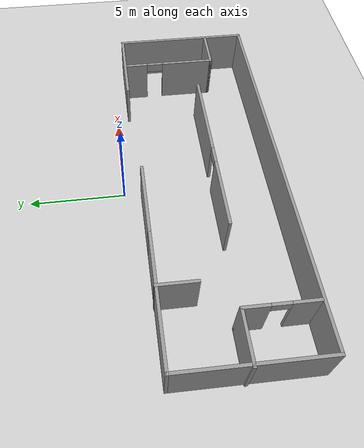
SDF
<sdf version="1.7">
 <world name="default">
  <light name="sun" type="directional">
   <pose>0 0 10 0 -0 0</pose>
   <diffuse>0.8 0.8 0.8 1</diffuse>
   <specular>0.2 0.2 0.2 1</specular>
   <attenuation>
    <range>1000</range>
    <constant>0.9</constant>
    <linear>0.01</linear>
    <quadratic>0.001</quadratic>
   </attenuation>
   <direction>-0.5 0.1 -0.9</direction>
   <spot><inner_angle>0</inner_angle><outer_angle>0</outer_angle><falloff>0</falloff></spot>
  </light>
  <model name="ground_plane">
   <static>1</static>
   <link name="link">
    <collision name="collision">
     <geometry><plane><normal>0 0 1</normal><size>100 100</size></plane></geometry>
     <surface>
      <contact><collide_bitmask>65535</collide_bitmask></contact>
      <friction><ode><mu>100</mu><mu2>50</mu2></ode></friction>
     </surface>
    </collision>
    <visual name="visual">
     <cast_shadows>0</cast_shadows>
     <geometry><plane><normal>0 0 1</normal><size>100 100</size></plane></geometry>
     <material>
      <script><uri>file://media/materials/scripts/gazebo.material</uri><name>Gazebo/Grey</name></script>
     </material>
    </visual>
   </link>
  </model>
  <gravity>0 0 -9.8</gravity>
  <magnetic_field>6e-06 2.3e-05 -4.2e-05</magnetic_field>
  <atmosphere type="adiabatic"/>
  <physics type="ode">
   <max_step_size>0.001</max_step_size>
   <real_time_factor>1</real_time_factor>
   <real_time_update_rate>1000</real_time_update_rate>
  </physics>
  <scene><ambient>0.4 0.4 0.4 1</ambient><background>0.7 0.7 0.7 1</background><shadows>1</shadows></scene>
  <spherical_coordinates>
   <surface_model>EARTH_WGS84</surface_model>
   <latitude_deg>0</latitude_deg>
   <longitude_deg>0</longitude_deg>
   <elevation>0</elevation>
   <heading_deg>0</heading_deg>
  </spherical_coordinates>
  <model name="world">
   <pose>-0.300498 -3.9225 0 0 -0 0</pose>
   <link name="Wall_0">
    <collision name="Wall_0_Collision">
     <geometry><box><size>3.75 0.15 2.5</size></box></geometry>
     <pose>0 0 1.25 0 -0 0</pose>
    </collision>
    <visual name="Wall_0_Visual">
     <pose>0 0 1.25 0 -0 0</pose>
     <geometry><box><size>3.75 0.15 2.5</size></box></geometry>
     <material>
      <script><uri>file://media/materials/scripts/gazebo.material</uri><name>Gazebo/Grey</name></script>
      <ambient>1 1 1 1</ambient>
     </material>
     <meta><layer>0</layer></meta>
    </visual>
    <pose>-1.6095 3.0025 0 0 -0 3.14159</pose>
   </link>
   <link name="Wall_28">
    <collision name="Wall_28_Collision">
     <geometry><box><size>6.5 0.15 2.5</size></box></geometry>
     <pose>0 0 1.25 0 -0 0</pose>
    </collision>
    <visual name="Wall_28_Visual">
     <pose>0 0 1.25 0 -0 0</pose>
     <geometry><box><size>6.5 0.15 2.5</size></box></geometry>
     <material>
      <script><uri>file://media/materials/scripts/gazebo.material</uri><name>Gazebo/Grey</name></script>
      <ambient>1 1 1 1</ambient>
     </material>
     <meta><layer>0</layer></meta>
    </visual>
    <pose>-6.5845 3.0025 0 0 -0 3.14159</pose>
   </link>
   <link name="Wall_29">
    <collision name="Wall_29_Collision">
     <geometry><box><size>7 0.15 2.5</size></box></geometry>
     <pose>0 0 1.25 0 -0 0</pose>
    </collision>
    <visual name="Wall_29_Visual">
     <pose>0 0 1.25 0 -0 0</pose>
     <geometry><box><size>7 0.15 2.5</size></box></geometry>
     <material>
      <script><uri>file://media/materials/scripts/gazebo.material</uri><name>Gazebo/Grey</name></script>
      <ambient>1 1 1 1</ambient>
     </material>
     <meta><layer>0</layer></meta>
    </visual>
    <pose>-9.7595 -0.4225 0 0 -0 -1.5708</pose>
   </link>
   <link name="Wall_30">
    <collision name="Wall_30_Collision">
     <geometry><box><size>19.75 0.15 2.5</size></box></geometry>
     <pose>0 0 1.25 0 -0 0</pose>
    </collision>
    <visual name="Wall_30_Visual">
     <pose>0 0 1.25 0 -0 0</pose>
     <geometry><box><size>19.75 0.15 2.5</size></box></geometry>
     <material>
      <script><uri>file://media/materials/scripts/gazebo.material</uri><name>Gazebo/Grey</name></script>
      <ambient>1 1 1 1</ambient>
     </material>
     <meta><layer>0</layer></meta>
    </visual>
    <pose>0.040498 -3.8475 0 0 -0 0</pose>
   </link>
   <link name="Wall_31">
    <collision name="Wall_31_Collision">
     <geometry><box><size>7.25 0.15 2.5</size></box></geometry>
     <pose>0 0 1.25 0 -0 0</pose>
    </collision>
    <visual name="Wall_31_Visual">
     <pose>0 0 1.25 0 -0 0</pose>
     <geometry><box><size>7.25 0.15 2.5</size></box></geometry>
     <material>
      <script><uri>file://media/materials/scripts/gazebo.material</uri><name>Gazebo/Grey</name></script>
      <ambient>1 1 1 1</ambient>
     </material>
     <meta><layer>0</layer></meta>
    </visual>
    <pose>9.8405 -0.2975 0 0 -0 1.5708</pose>
   </link>
   <link name="Wall_32">
    <collision name="Wall_32_Collision">
     <geometry><box><size>4.25 0.15 2.5</size></box></geometry>
     <pose>0 0 1.25 0 -0 0</pose>
    </collision>
    <visual name="Wall_32_Visual">
     <pose>0 0 1.25 0 -0 0</pose>
     <geometry><box><size>4.25 0.15 2.5</size></box></geometry>
     <material>
      <script><uri>file://media/materials/scripts/gazebo.material</uri><name>Gazebo/Grey</name></script>
      <ambient>1 1 1 1</ambient>
     </material>
     <meta><layer>0</layer></meta>
    </visual>
    <pose>7.7905 3.2525 0 0 -0 3.14159</pose>
   </link>
   <link name="Wall_34">
    <collision name="Wall_34_Collision">
     <geometry><box><size>2.5 0.15 2.5</size></box></geometry>
     <pose>0 0 1.25 0 -0 0</pose>
    </collision>
    <visual name="Wall_34_Visual">
     <pose>0 0 1.25 0 -0 0</pose>
     <geometry><box><size>2.5 0.15 2.5</size></box></geometry>
     <material>
      <script><uri>file://media/materials/scripts/gazebo.material</uri><name>Gazebo/Grey</name></script>
      <ambient>1 1 1 1</ambient>
     </material>
     <meta><layer>0</layer></meta>
    </visual>
    <pose>-8.6655 -0.364655 0 0 -0 0</pose>
   </link>
   <link name="Wall_35">
    <pose>-7.4905 -2.03966 0 0 -0 -1.5708</pose>
    <visual name="Wall_35_Visual_0">
     <pose>-1.09484 0 1.25 0 -0 0</pose>
     <geometry><box><size>1.31033 0.15 2.5</size></box></geometry>
     <material>
      <script><uri>file://media/materials/scripts/gazebo.material</uri><name>Gazebo/Grey</name></script>
      <ambient>1 1 1 1</ambient>
     </material>
     <meta><layer>0</layer></meta>
    </visual>
    <collision name="Wall_35_Collision_0">
     <geometry><box><size>1.31033 0.15 2.5</size></box></geometry>
     <pose>-1.09484 0 1.25 0 -0 0</pose>
    </collision>
    <visual name="Wall_35_Visual_1">
     <pose>1.10516 0 1.25 0 -0 0</pose>
     <geometry><box><size>1.28967 0.15 2.5</size></box></geometry>
     <material>
      <script><uri>file://media/materials/scripts/gazebo.material</uri><name>Gazebo/Grey</name></script>
      <ambient>1 1 1 1</ambient>
     </material>
     <meta><layer>0</layer></meta>
    </visual>
    <collision name="Wall_35_Collision_1">
     <geometry><box><size>1.28967 0.15 2.5</size></box></geometry>
     <pose>1.10516 0 1.25 0 -0 0</pose>
    </collision>
    <visual name="Wall_35_Visual_2">
     <pose>0.010329 0 2.25 0 -0 0</pose>
     <geometry><box><size>0.9 0.15 0.5</size></box></geometry>
     <material>
      <script><uri>file://media/materials/scripts/gazebo.material</uri><name>Gazebo/Grey</name></script>
      <ambient>1 1 1 1</ambient>
     </material>
     <meta><layer>0</layer></meta>
    </visual>
    <collision name="Wall_35_Collision_2">
     <geometry><box><size>0.9 0.15 0.5</size></box></geometry>
     <pose>0.010329 0 2.25 0 -0 0</pose>
    </collision>
   </link>
   <link name="Wall_37">
    <collision name="Wall_37_Collision">
     <geometry><box><size>2.25 0.15 2.5</size></box></geometry>
     <pose>0 0 1.25 0 -0 0</pose>
    </collision>
    <visual name="Wall_37_Visual">
     <pose>0 0 1.25 0 -0 0</pose>
     <geometry><box><size>2.25 0.15 2.5</size></box></geometry>
     <material>
      <script><uri>file://media/materials/scripts/gazebo.material</uri><name>Gazebo/Grey</name></script>
      <ambient>1 1 1 1</ambient>
     </material>
     <meta><layer>0</layer></meta>
    </visual>
    <pose>8.77167 -1.75572 0 0 -0 3.14159</pose>
   </link>
   <link name="Wall_38">
    <collision name="Wall_38_Collision">
     <geometry><box><size>0.16 0.15 2.5</size></box></geometry>
     <pose>0 0 1.25 0 -0 0</pose>
    </collision>
    <visual name="Wall_38_Visual">
     <pose>0 0 1.25 0 -0 0</pose>
     <geometry><box><size>0.16 0.15 2.5</size></box></geometry>
     <material>
      <script><uri>file://media/materials/scripts/gazebo.material</uri><name>Gazebo/Grey</name></script>
      <ambient>1 1 1 1</ambient>
     </material>
     <meta><layer>0</layer></meta>
    </visual>
    <pose>7.72667 -1.75572 0 0 -0 0</pose>
   </link>
   <link name="Wall_39">
    <pose>7.73167 0.66928 0 0 -0 1.5708</pose>
    <visual name="Wall_39_Visual_0">
     <pose>-1.0423 0 1.25 0 -0 0</pose>
     <geometry><box><size>2.9154 0.15 2.5</size></box></geometry>
     <material>
      <script><uri>file://media/materials/scripts/gazebo.material</uri><name>Gazebo/Grey</name></script>
      <ambient>1 1 1 1</ambient>
     </material>
     <meta><layer>0</layer></meta>
    </visual>
    <collision name="Wall_39_Collision_0">
     <geometry><box><size>2.9154 0.15 2.5</size></box></geometry>
     <pose>-1.0423 0 1.25 0 -0 0</pose>
    </collision>
    <visual name="Wall_39_Visual_1">
     <pose>1.9077 0 1.25 0 -0 0</pose>
     <geometry><box><size>1.1846 0.15 2.5</size></box></geometry>
     <material>
      <script><uri>file://media/materials/scripts/gazebo.material</uri><name>Gazebo/Grey</name></script>
      <ambient>1 1 1 1</ambient>
     </material>
     <meta><layer>0</layer></meta>
    </visual>
    <collision name="Wall_39_Collision_1">
     <geometry><box><size>1.1846 0.15 2.5</size></box></geometry>
     <pose>1.9077 0 1.25 0 -0 0</pose>
    </collision>
    <visual name="Wall_39_Visual_2">
     <pose>0.865404 0 2.25 0 -0 0</pose>
     <geometry><box><size>0.9 0.15 0.5</size></box></geometry>
     <material>
      <script><uri>file://media/materials/scripts/gazebo.material</uri><name>Gazebo/Grey</name></script>
      <ambient>1 1 1 1</ambient>
     </material>
     <meta><layer>0</layer></meta>
    </visual>
    <collision name="Wall_39_Collision_2">
     <geometry><box><size>0.9 0.15 0.5</size></box></geometry>
     <pose>0.865404 0 2.25 0 -0 0</pose>
    </collision>
   </link>
   <link name="Wall_41">
    <collision name="Wall_41_Collision">
     <geometry><box><size>2 0.15 2.5</size></box></geometry>
     <pose>0 0 1.25 0 -0 0</pose>
    </collision>
    <visual name="Wall_41_Visual">
     <pose>0 0 1.25 0 -0 0</pose>
     <geometry><box><size>2 0.15 2.5</size></box></geometry>
     <material>
      <script><uri>file://media/materials/scripts/gazebo.material</uri><name>Gazebo/Grey</name></script>
      <ambient>1 1 1 1</ambient>
     </material>
     <meta><layer>0</layer></meta>
    </visual>
    <pose>-6.12207 2.10775 0 0 -0 -1.5708</pose>
   </link>
   <link name="Wall_9">
    <pose>1.1405 -0.6975 0 0 -0 0</pose>
    <visual name="Wall_9_Visual_0">
     <pose>-2.79813 0 1.25 0 -0 0</pose>
     <geometry><box><size>3.65374 0.15 2.5</size></box></geometry>
     <material>
      <script><uri>file://media/materials/scripts/gazebo.material</uri><name>Gazebo/Grey</name></script>
      <ambient>1 1 1 1</ambient>
     </material>
     <meta><layer>0</layer></meta>
    </visual>
    <collision name="Wall_9_Collision_0">
     <geometry><box><size>3.65374 0.15 2.5</size></box></geometry>
     <pose>-2.79813 0 1.25 0 -0 0</pose>
    </collision>
    <visual name="Wall_9_Visual_1">
     <pose>2.27687 0 1.25 0 -0 0</pose>
     <geometry><box><size>4.69626 0.15 2.5</size></box></geometry>
     <material>
      <script><uri>file://media/materials/scripts/gazebo.material</uri><name>Gazebo/Grey</name></script>
      <ambient>1 1 1 1</ambient>
     </material>
     <meta><layer>0</layer></meta>
    </visual>
    <collision name="Wall_9_Collision_1">
     <geometry><box><size>4.69626 0.15 2.5</size></box></geometry>
     <pose>2.27687 0 1.25 0 -0 0</pose>
    </collision>
    <visual name="Wall_9_Visual_2">
     <pose>-0.521257 0 2.25 0 -0 0</pose>
     <geometry><box><size>0.9 0.15 0.5</size></box></geometry>
     <material>
      <script><uri>file://media/materials/scripts/gazebo.material</uri><name>Gazebo/Grey</name></script>
      <ambient>1 1 1 1</ambient>
     </material>
     <meta><layer>0</layer></meta>
    </visual>
    <collision name="Wall_9_Collision_2">
     <geometry><box><size>0.9 0.15 0.5</size></box></geometry>
     <pose>-0.521257 0 2.25 0 -0 0</pose>
    </collision>
   </link>
   <static>1</static>
  </model>
 </world>
</sdf>
